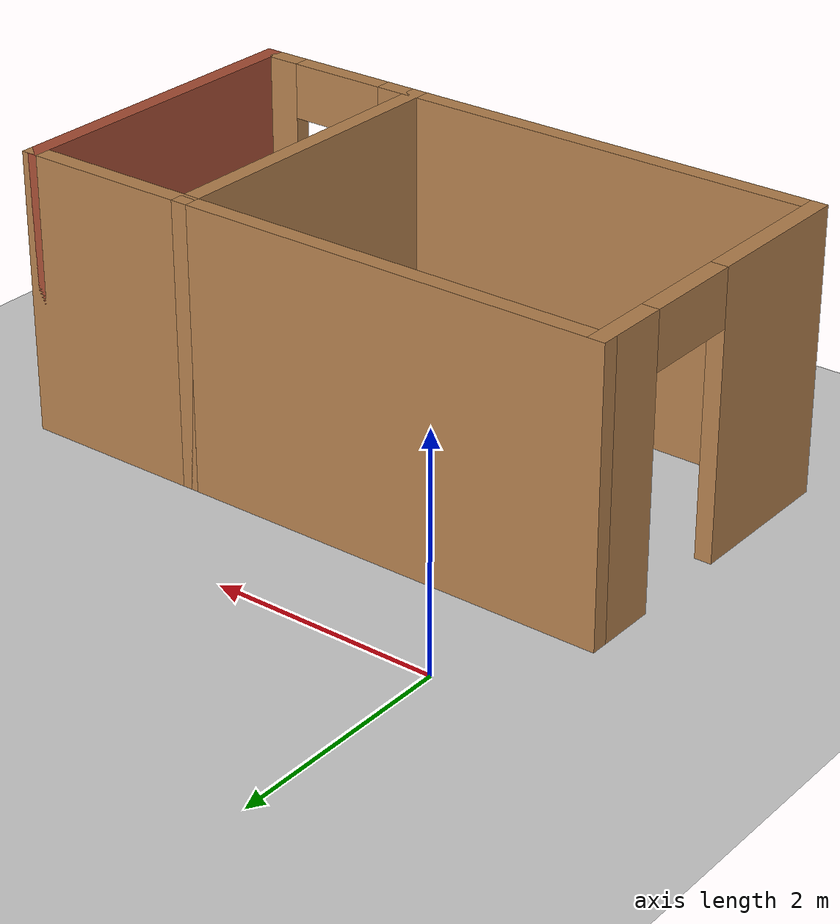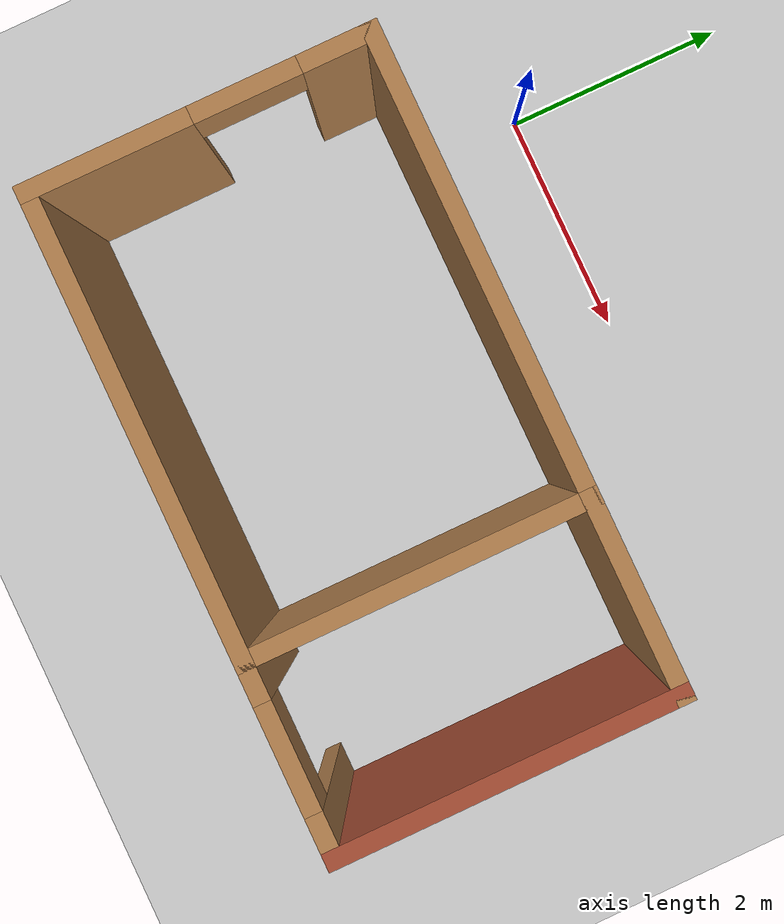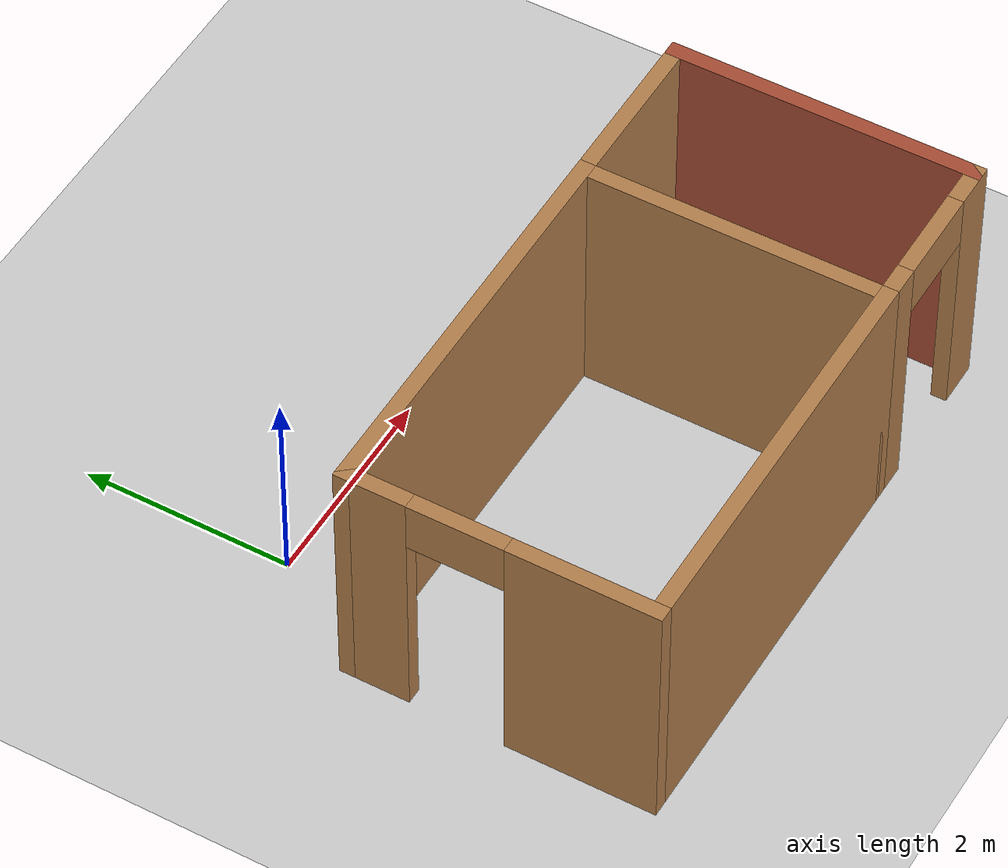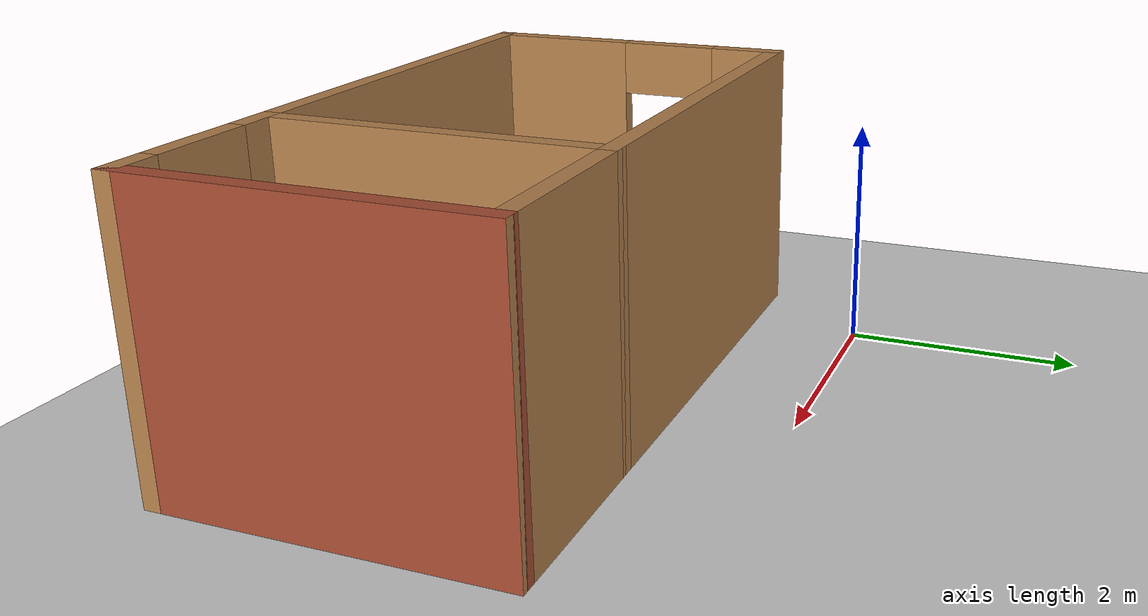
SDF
<sdf version="1.6">
 <world name="default">
  <light name="sun" type="directional">
   <pose>0 0 10 0 -0 0</pose>
   <diffuse>0.8 0.8 0.8 1</diffuse>
   <specular>0.2 0.2 0.2 1</specular>
   <attenuation>
    <range>1000</range>
    <constant>0.9</constant>
    <linear>0.01</linear>
    <quadratic>0.001</quadratic>
   </attenuation>
   <direction>-0.5 0.1 -0.9</direction>
  </light>
  <model name="ground_plane">
   <static>1</static>
   <link name="link">
    <collision name="collision">
     <geometry><plane><normal>0 0 1</normal><size>100 100</size></plane></geometry>
     <surface>
      <contact><collide_bitmask>65535</collide_bitmask></contact>
      <friction><ode><mu>100</mu><mu2>50</mu2></ode></friction>
     </surface>
    </collision>
    <visual name="visual">
     <cast_shadows>0</cast_shadows>
     <geometry><plane><normal>0 0 1</normal><size>100 100</size></plane></geometry>
     <material>
      <script><uri>file://media/materials/scripts/gazebo.material</uri><name>Gazebo/Grey</name></script>
     </material>
    </visual>
   </link>
  </model>
  <gravity>0 0 -9.8</gravity>
  <magnetic_field>6e-06 2.3e-05 -4.2e-05</magnetic_field>
  <atmosphere type="adiabatic"/>
  <physics name="default_physics" default="0" type="ode">
   <max_step_size>0.001</max_step_size>
   <real_time_factor>1</real_time_factor>
   <real_time_update_rate>1000</real_time_update_rate>
  </physics>
  <scene><ambient>0.4 0.4 0.4 1</ambient><background>0.7 0.7 0.7 1</background><shadows>1</shadows></scene>
  <audio><device>default</device></audio>
  <spherical_coordinates>
   <surface_model>EARTH_WGS84</surface_model>
   <latitude_deg>0</latitude_deg>
   <longitude_deg>0</longitude_deg>
   <elevation>0</elevation>
   <heading_deg>0</heading_deg>
  </spherical_coordinates>
  <model name="Rooms">
   <pose>2.05244 -2.46396 0 0 -0 0</pose>
   <link name="Wall_0">
    <pose>-2.725 -0 0 0 -0 -1.5708</pose>
    <visual name="Wall_0_Visual_0">
     <pose>-1.1625 0 1.25 0 -0 0</pose>
     <geometry><box><size>0.675 0.15 2.5</size></box></geometry>
     <material>
      <script><uri>file://media/materials/scripts/gazebo.material</uri><name>Gazebo/Wood</name></script>
      <ambient>1 1 1 1</ambient>
     </material>
     <meta><layer>0</layer></meta>
    </visual>
    <collision name="Wall_0_Collision_0">
     <geometry><box><size>0.675 0.15 2.5</size></box></geometry>
     <pose>-1.1625 0 1.25 0 -0 0</pose>
    </collision>
    <visual name="Wall_0_Visual_1">
     <pose>0.7875 0 1.25 0 -0 0</pose>
     <geometry><box><size>1.425 0.15 2.5</size></box></geometry>
     <material>
      <script><uri>file://media/materials/scripts/gazebo.material</uri><name>Gazebo/Wood</name></script>
      <ambient>1 1 1 1</ambient>
     </material>
     <meta><layer>0</layer></meta>
    </visual>
    <collision name="Wall_0_Collision_1">
     <geometry><box><size>1.425 0.15 2.5</size></box></geometry>
     <pose>0.7875 0 1.25 0 -0 0</pose>
    </collision>
    <visual name="Wall_0_Visual_2">
     <pose>-0.375 0 2.25 0 -0 0</pose>
     <geometry><box><size>0.9 0.15 0.5</size></box></geometry>
     <material>
      <script><uri>file://media/materials/scripts/gazebo.material</uri><name>Gazebo/Wood</name></script>
      <ambient>1 1 1 1</ambient>
     </material>
     <meta><layer>0</layer></meta>
    </visual>
    <collision name="Wall_0_Collision_2">
     <geometry><box><size>0.9 0.15 0.5</size></box></geometry>
     <pose>-0.375 0 2.25 0 -0 0</pose>
    </collision>
   </link>
   <link name="Wall_1">
    <collision name="Wall_1_Collision">
     <geometry><box><size>4 0.15 2.5</size></box></geometry>
     <pose>0 0 1.25 0 -0 0</pose>
    </collision>
    <visual name="Wall_1_Visual">
     <pose>0 0 1.25 0 -0 0</pose>
     <geometry><box><size>4 0.15 2.5</size></box></geometry>
     <material>
      <script><uri>file://media/materials/scripts/gazebo.material</uri><name>Gazebo/Wood</name></script>
      <ambient>1 1 1 1</ambient>
     </material>
     <meta><layer>0</layer></meta>
    </visual>
    <pose>-0.8 -1.425 0 0 -0 0</pose>
   </link>
   <link name="Wall_2">
    <collision name="Wall_2_Collision">
     <geometry><box><size>3 0.15 2.5</size></box></geometry>
     <pose>0 0 1.25 0 -0 0</pose>
    </collision>
    <visual name="Wall_2_Visual">
     <pose>0 0 1.25 0 -0 0</pose>
     <geometry><box><size>3 0.15 2.5</size></box></geometry>
     <material>
      <script><uri>file://media/materials/scripts/gazebo.material</uri><name>Gazebo/Wood</name></script>
      <ambient>1 1 1 1</ambient>
     </material>
     <meta><layer>0</layer></meta>
    </visual>
    <pose>1.125 -0 0 0 -0 1.5708</pose>
   </link>
   <link name="Wall_3">
    <collision name="Wall_3_Collision">
     <geometry><box><size>4 0.15 2.5</size></box></geometry>
     <pose>0 0 1.25 0 -0 0</pose>
    </collision>
    <visual name="Wall_3_Visual">
     <pose>0 0 1.25 0 -0 0</pose>
     <geometry><box><size>4 0.15 2.5</size></box></geometry>
     <material>
      <script><uri>file://media/materials/scripts/gazebo.material</uri><name>Gazebo/Wood</name></script>
      <ambient>1 1 1 1</ambient>
     </material>
     <meta><layer>0</layer></meta>
    </visual>
    <pose>-0.8 1.425 0 0 -0 3.14159</pose>
   </link>
   <link name="Wall_5">
    <collision name="Wall_5_Collision">
     <geometry><box><size>1.75 0.15 2.5</size></box></geometry>
     <pose>0 0 1.25 0 -0 0</pose>
    </collision>
    <visual name="Wall_5_Visual">
     <pose>0 0 1.25 0 -0 0</pose>
     <geometry><box><size>1.75 0.15 2.5</size></box></geometry>
     <material>
      <script><uri>file://media/materials/scripts/gazebo.material</uri><name>Gazebo/Wood</name></script>
      <ambient>1 1 1 1</ambient>
     </material>
     <meta><layer>0</layer></meta>
    </visual>
    <pose>1.925 1.425 0 0 -0 0</pose>
   </link>
   <link name="Wall_6">
    <collision name="Wall_6_Collision">
     <geometry><box><size>3 0.15 2.5</size></box></geometry>
     <pose>0 0 1.25 0 -0 0</pose>
    </collision>
    <visual name="Wall_6_Visual">
     <pose>0 0 1.25 0 -0 0</pose>
     <geometry><box><size>3 0.15 2.5</size></box></geometry>
     <material>
      <script><uri>file://media/materials/scripts/gazebo.material</uri><name>Gazebo/Bricks</name></script>
      <ambient>1 1 1 1</ambient>
     </material>
     <meta><layer>0</layer></meta>
    </visual>
    <pose>2.725 -0 0 0 -0 -1.5708</pose>
   </link>
   <link name="Wall_7">
    <pose>1.925 -1.425 0 0 -0 3.14159</pose>
    <visual name="Wall_7_Visual_0">
     <pose>-0.6575 0 1.25 0 -0 0</pose>
     <geometry><box><size>0.435 0.15 2.5</size></box></geometry>
     <material>
      <script><uri>file://media/materials/scripts/gazebo.material</uri><name>Gazebo/Wood</name></script>
      <ambient>1 1 1 1</ambient>
     </material>
     <meta><layer>0</layer></meta>
    </visual>
    <collision name="Wall_7_Collision_0">
     <geometry><box><size>0.435 0.15 2.5</size></box></geometry>
     <pose>-0.6575 0 1.25 0 -0 0</pose>
    </collision>
    <visual name="Wall_7_Visual_1">
     <pose>0.6675 0 1.25 0 -0 0</pose>
     <geometry><box><size>0.415 0.15 2.5</size></box></geometry>
     <material>
      <script><uri>file://media/materials/scripts/gazebo.material</uri><name>Gazebo/Wood</name></script>
      <ambient>1 1 1 1</ambient>
     </material>
     <meta><layer>0</layer></meta>
    </visual>
    <collision name="Wall_7_Collision_1">
     <geometry><box><size>0.415 0.15 2.5</size></box></geometry>
     <pose>0.6675 0 1.25 0 -0 0</pose>
    </collision>
    <visual name="Wall_7_Visual_2">
     <pose>0.01 0 2.25 0 -0 0</pose>
     <geometry><box><size>0.9 0.15 0.5</size></box></geometry>
     <material>
      <script><uri>file://media/materials/scripts/gazebo.material</uri><name>Gazebo/Wood</name></script>
      <ambient>1 1 1 1</ambient>
     </material>
     <meta><layer>0</layer></meta>
    </visual>
    <collision name="Wall_7_Collision_2">
     <geometry><box><size>0.9 0.15 0.5</size></box></geometry>
     <pose>0.01 0 2.25 0 -0 0</pose>
    </collision>
   </link>
   <static>1</static>
  </model>
 </world>
</sdf>
